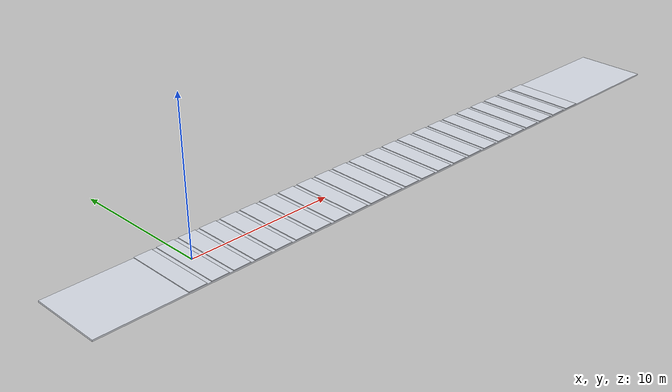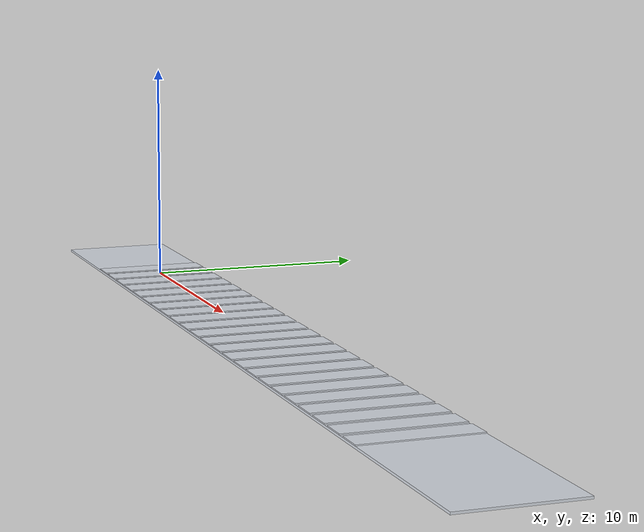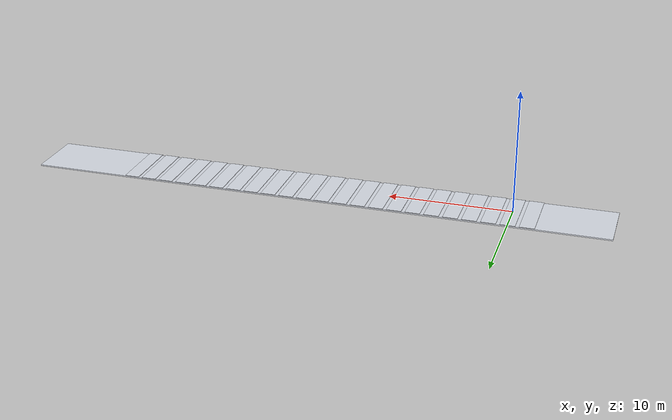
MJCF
<mujoco model="scene">
    <statistic center="0 0 0.1" extent="0.8"/>
    <visual>
        <headlight diffuse="0.4 0.4 0.4" ambient="0.25 0.25 0.25" specular="0.25 0.25 0.25"/>
        <rgba haze="0.99 0.99 0.99 1"/>
        <global azimuth="-130" elevation="-20"/>
    </visual>
    <asset>
        <texture type="skybox" builtin="gradient" rgb1="0.99 0.99 0.99" rgb2="0.99 0.99 0.99" width="512" height="3072"/>
        <texture type="2d" name="groundplane" builtin="checker" mark="edge"
                 rgb1="0.93 0.93 0.93" rgb2="0.82 0.86 0.93" markrgb="0 0 0" width="250" height="250"/>
        <material name="groundplane" texture="groundplane" texuniform="true" texrepeat="4 4" reflectance="0.05"/>
    </asset>
    <worldbody>
        <light pos="0 0 5.0" dir="0 0 -1" directional="true" castshadow="true"/>
        <!-- Continuous trench floor at z = -0.05 (the "hole" bottom). -->
        <geom name="trench_floor" type="box" size="24 2.5 0.05" pos="16 0 -0.1000"
              material="groundplane" friction="1.0 0.005 0.0"/>
        <geom name="gap_strip_0" type="box" size="0.6000 2.5 0.0250" pos="-1.5 0 -0.0250" material="groundplane" friction="1.0 0.005 0.0"/>
        <geom name="floor" type="box" size="0.6000 2.5 0.0250" pos="0.0 0 -0.0250" material="groundplane" friction="1.0 0.005 0.0"/>
        <geom name="gap_strip_2" type="box" size="0.6000 2.5 0.0250" pos="1.5 0 -0.0250" material="groundplane" friction="1.0 0.005 0.0"/>
        <geom name="gap_strip_3" type="box" size="0.6000 2.5 0.0250" pos="3.0 0 -0.0250" material="groundplane" friction="1.0 0.005 0.0"/>
        <geom name="gap_strip_4" type="box" size="0.6000 2.5 0.0250" pos="4.5 0 -0.0250" material="groundplane" friction="1.0 0.005 0.0"/>
        <geom name="gap_strip_5" type="box" size="0.6000 2.5 0.0250" pos="6.0 0 -0.0250" material="groundplane" friction="1.0 0.005 0.0"/>
        <geom name="gap_strip_6" type="box" size="0.6000 2.5 0.0250" pos="7.5 0 -0.0250" material="groundplane" friction="1.0 0.005 0.0"/>
        <geom name="gap_strip_7" type="box" size="0.6000 2.5 0.0250" pos="9.0 0 -0.0250" material="groundplane" friction="1.0 0.005 0.0"/>
        <geom name="gap_strip_8" type="box" size="0.6000 2.5 0.0250" pos="10.5 0 -0.0250" material="groundplane" friction="1.0 0.005 0.0"/>
        <geom name="gap_strip_9" type="box" size="0.6000 2.5 0.0250" pos="12.0 0 -0.0250" material="groundplane" friction="1.0 0.005 0.0"/>
        <geom name="gap_strip_10" type="box" size="0.6000 2.5 0.0250" pos="13.5 0 -0.0250" material="groundplane" friction="1.0 0.005 0.0"/>
        <geom name="gap_strip_11" type="box" size="0.6000 2.5 0.0250" pos="15.0 0 -0.0250" material="groundplane" friction="1.0 0.005 0.0"/>
        <geom name="gap_strip_12" type="box" size="0.6000 2.5 0.0250" pos="16.5 0 -0.0250" material="groundplane" friction="1.0 0.005 0.0"/>
        <geom name="gap_strip_13" type="box" size="0.6000 2.5 0.0250" pos="18.0 0 -0.0250" material="groundplane" friction="1.0 0.005 0.0"/>
        <geom name="gap_strip_14" type="box" size="0.6000 2.5 0.0250" pos="19.5 0 -0.0250" material="groundplane" friction="1.0 0.005 0.0"/>
        <geom name="gap_strip_15" type="box" size="0.6000 2.5 0.0250" pos="21.0 0 -0.0250" material="groundplane" friction="1.0 0.005 0.0"/>
        <geom name="gap_strip_16" type="box" size="0.6000 2.5 0.0250" pos="22.5 0 -0.0250" material="groundplane" friction="1.0 0.005 0.0"/>
        <geom name="gap_strip_17" type="box" size="0.6000 2.5 0.0250" pos="24.0 0 -0.0250" material="groundplane" friction="1.0 0.005 0.0"/>
        <geom name="gap_strip_18" type="box" size="0.6000 2.5 0.0250" pos="25.5 0 -0.0250" material="groundplane" friction="1.0 0.005 0.0"/>
        <geom name="gap_strip_19" type="box" size="0.6000 2.5 0.0250" pos="27.0 0 -0.0250" material="groundplane" friction="1.0 0.005 0.0"/>
        <geom name="gap_strip_20" type="box" size="0.6000 2.5 0.0250" pos="28.5 0 -0.0250" material="groundplane" friction="1.0 0.005 0.0"/>
        <geom name="gap_strip_21" type="box" size="0.6000 2.5 0.0250" pos="30.0 0 -0.0250" material="groundplane" friction="1.0 0.005 0.0"/>
        <geom name="gap_strip_22" type="box" size="0.6000 2.5 0.0250" pos="31.5 0 -0.0250" material="groundplane" friction="1.0 0.005 0.0"/>
    </worldbody>
</mujoco>
